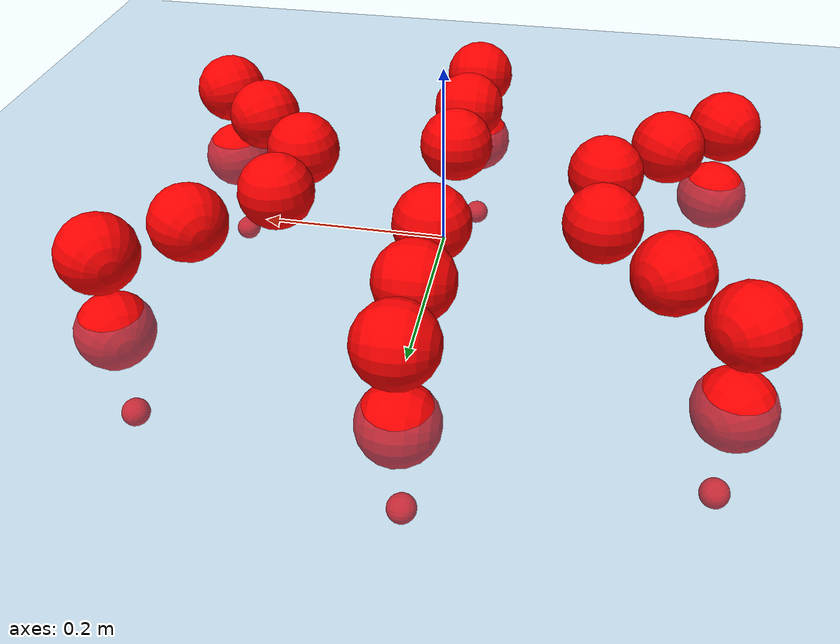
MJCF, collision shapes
<mujoco model="Golem">
  <compiler angle="radian" assetdir="assets" balanceinertia="true" inertiafromgeom="false"/>

  <option timestep="0.005" density="1.2" viscosity="2e-05"/>

  <size nkey="1"/>

  <visual>
    <quality shadowsize="8192"/>
    <map shadowclip="0.5"/>
  </visual>

  <default>
    <default class="/">
      <joint armature="0.01" damping="0.01" frictionloss="0.01"/>
      <geom contype="0" conaffinity="0" group="1" solref="-1000 -80"/>
      <site size="0.01 0.005 0.005" group="5"/>
      <general forcelimited="true" biastype="affine" gainprm="25" biasprm="0 -25 -0.5"/>
      <default class="visual">
        <geom type="mesh" group="2"/>
      </default>
      <default class="collision">
        <geom group="3"/>
      </default>
      <default class="foot">
        <geom size="0.01 0 0" condim="6" group="4" priority="1" solimp="0.015 1 0.01"/>
      </default>
      <default class="reward_collision_sphere">
        <geom group="5" rgba="1 0 0 1"/>
      </default>
    </default>
  </default>

  <asset>
    <texture type="skybox" colorspace="auto" name="//unnamed_texture_0" builtin="gradient" rgb1="0.95 0.95 0.95" rgb2="0.95 0.95 0.95" width="100" height="600"/>
    <texture type="2d" colorspace="auto" name="texplane" builtin="checker" rgb1="0.345 0.575 0.748" rgb2="0.345 0.575 0.748" markrgb="1 1 1" width="512" height="512"/>
    <material name="MatPlane" class="/" texture="texplane" texuniform="true" texrepeat="2 2" specular="0.9"/>
    <mesh name="body" class="/" file="body.stl" scale="0.001 0.001 0.001"/>
    <mesh name="coxa" class="/" file="coxa.stl" scale="0.001 0.001 0.001"/>
    <mesh name="femur" class="/" file="femur.stl" scale="0.001 0.001 0.001"/>
    <mesh name="tibia" class="/" file="tibia.stl" scale="0.001 0.001 0.001"/>
    <mesh name="tarsus" class="/" file="tarsus.stl" scale="0.001 0.001 0.001"/>
  </asset>

  <worldbody>
    <geom name="floor" class="/" size="100 100 0.125" type="plane" group="0" material="MatPlane"/>
    <light name="toplight_shadow" class="/" pos="0 0 5" dir="0.0990148 0.0990148 -0.990148" type="directional" ambient="0.04 0.04 0.04" diffuse="0.55 0.55 0.55" specular="0.12 0.12 0.12"/>
    <light name="toplight_fill" class="/" pos="0 0 5" dir="0.0990148 0.0990148 -0.990148" type="directional" castshadow="false" ambient="0.04 0.04 0.04" diffuse="0.3 0.3 0.3" specular="0.08 0.08 0.08"/>
    <body name="trunk" pos="-0.000556482 -0.000105731 -0.000431463" quat="1 0.000368799 2.79665e-05 -0.000110108">
      <inertial pos="0.000893109 -0.000159024 -0.00493282" quat="0.999999 0.00105601 -0.000275204 -0.000217498" mass="3.73173" diaginertia="0.0135985 0.00417047 0.0174107"/>
      <joint name="//unnamed_joint_0" type="free"/>
      <geom name="//unnamed_geom_1" class="/" pos="0 0 0.0714005" quat="1 0 0 0" type="mesh" rgba="0.9 0.9 0.9 1" mesh="body"/>
      <site name="imu" class="/" pos="0.146924 0.00270586 0.113254" size="0.0100694"/>
      <camera name="track" class="/" pos="0 -1.68339 0" quat="0.707107 0.707107 0 0" mode="trackcom"/>
      <camera name="ego_camera" class="/" pos="0.138255 0 0.111563" quat="-0.5 -0.5 0.5 0.5"/>
      <body name="coxa_RR" pos="-0.18839 -0.0717754 0.0707634" quat="0.382849 -0.000415979 -0.000190748 -0.923811">
        <inertial pos="3.25301e-05 -1.88786e-05 -0.000360748" quat="0.999999 0.00127726 -0.000791843 0.000756544" mass="0.201697" diaginertia="0.0133813 0.0042044 0.0165269"/>
        <joint name="coxa_joint_RR" class="/" pos="0 0 0" axis="0.0024286 -0.0011573 -0.999996" range="-3.13449 3.15538" armature="0.0100793" damping="0.00973671" frictionloss="0.00980455"/>
        <geom name="//unnamed_geom_2" class="/" type="mesh" rgba="0.2 0.2 0.2 1" mesh="coxa"/>
        <geom name="//unnamed_geom_3" class="reward_collision_sphere" size="0.0402777" pos="-0.0319049 0 0"/>
        <body name="femur_RR" pos="0.0643755 0.00313616 -0.00156605" quat="0.500151 -0.499918 0.500101 0.49983">
          <inertial pos="-0.00249873 -9.31307e-05 -0.00262168" quat="0.999919 -0.0125849 0.00126952 -0.00151118" mass="0.199901" diaginertia="0.0133509 0.00412362 0.0168586"/>
          <joint name="femur_joint_RR" class="/" pos="0 0 0" axis="0.00290282 0.00341471 -0.99999" stiffness="0.00657839" range="-3.11934 3.13571" armature="0.00980979" damping="0" frictionloss="0.0101528"/>
          <geom name="//unnamed_geom_4" class="/" type="mesh" rgba="0.9 0.9 0.9 1" mesh="femur"/>
          <geom name="//unnamed_geom_5" class="reward_collision_sphere" size="0.0402777"/>
          <body name="tibia_RR" pos="0.00179019 -0.0903774 -0.00182057" quat="-0.000229407 1 -0.000302799 0.000124253">
            <inertial pos="-0.000227493 0.000291877 -0.00193052" quat="1 -0.000144026 -0.000252768 0.000145161" mass="0.208622" diaginertia="0.0141382 0.00442187 0.0178464"/>
            <joint name="tibia_joint_RR" class="/" pos="0 0 0" axis="0.00578317 -0.00733308 0.999956" range="-3.14274 3.13822" armature="0.0103547" damping="0.00220081" frictionloss="0.00938586"/>
            <geom name="//unnamed_geom_6" class="/" type="mesh" rgba="0.2 0.2 0.2 1" mesh="tibia"/>
            <geom name="//unnamed_geom_7" class="reward_collision_sphere" size="0.0402777"/>
            <body name="tarsus_RR" pos="0.0928324 -0.000606362 -0.000730943" quat="1 -4.97734e-05 2.54593e-05 -3.40092e-05">
              <inertial pos="0.0658747 0.000618144 -5.45467e-05" quat="0.505336 0.495423 0.507031 0.492047" mass="0.209535" diaginertia="0.0133958 0.00420585 0.0176114"/>
              <joint name="tarsus_joint_RR" class="/" pos="0 0 0" axis="0.00769711 0.00343461 0.999964" range="-3.14788 3.12902" armature="0.0105074" damping="0.0404722" frictionloss="0.00956802"/>
              <geom name="//unnamed_geom_8" class="/" type="mesh" rgba="0.9 0.9 0.9 1" mesh="tarsus"/>
              <geom name="foot_1" class="foot" size="0.00985788" pos="0.119112 0 0" quat="0 -0.707107 0 0.707107"/>
              <geom name="//unnamed_geom_10" class="reward_collision_sphere" size="0.0402777"/>
              <geom name="//unnamed_geom_11" class="reward_collision_sphere" size="0.0151041" pos="0.114326 0 0"/>
              <site name="foot_1" class="foot" pos="0.119112 0 0" quat="0 -0.707107 0 0.707107" size="0.0100694"/>
            </body>
          </body>
        </body>
      </body>
      <body name="coxa_RM" pos="0.000365132 -0.110407 0.0728244" quat="0.707921 0.00052737 -3.03629e-05 -0.706291">
        <inertial pos="-0.00145919 -0.000139857 -0.00206821" quat="0.999982 0.000612457 0.00202742 0.00559658" mass="0.204777" diaginertia="0.0131721 0.00421106 0.0173777"/>
        <joint name="coxa_joint_RM" class="/" pos="0 0 0" axis="0.00202037 0.00222979 -0.999995" range="-3.12822 3.132" armature="0.0100525" damping="0.00923852" frictionloss="0.0104573"/>
        <geom name="//unnamed_geom_12" class="/" type="mesh" rgba="0.2 0.2 0.2 1" mesh="coxa"/>
        <geom name="//unnamed_geom_13" class="reward_collision_sphere" size="0.0402777" pos="-0.0319049 0 0"/>
        <body name="femur_RM" pos="0.0639829 0.000132344 -0.00149742" quat="0.499753 -0.500061 0.500264 0.499922">
          <inertial pos="0.00234816 -0.000456713 8.78071e-05" quat="0.999923 0.0117992 -0.0016108 0.00360797" mass="0.205951" diaginertia="0.0134258 0.00413449 0.0172904"/>
          <joint name="femur_joint_RM" class="/" pos="0 0 0" axis="0.00741037 -0.00283126 -0.999969" range="-3.13758 3.14006" armature="0.00957103" damping="0.00565364" frictionloss="0.0098475"/>
          <geom name="//unnamed_geom_14" class="/" type="mesh" rgba="0.9 0.9 0.9 1" mesh="femur"/>
          <geom name="//unnamed_geom_15" class="reward_collision_sphere" size="0.0402777"/>
          <body name="tibia_RM" pos="0.000509269 -0.0910825 -0.000424946" quat="5.39684e-05 1 0.000238931 8.21734e-06">
            <inertial pos="-0.00240809 -0.00113113 -0.000135042" quat="1 5.69597e-05 0.000286103 0.000652503" mass="0.201961" diaginertia="0.0137009 0.00412445 0.0165644"/>
            <joint name="tibia_joint_RM" class="/" pos="0 0 0" axis="8.28984e-05 0.000337252 1" range="-3.13216 3.15716" armature="0.0100617" damping="0.0124816" frictionloss="0.0105579"/>
            <geom name="//unnamed_geom_16" class="/" type="mesh" rgba="0.2 0.2 0.2 1" mesh="tibia"/>
            <geom name="//unnamed_geom_17" class="reward_collision_sphere" size="0.0402777"/>
            <body name="tarsus_RM" pos="0.0935105 -0.000955021 -3.99892e-05" quat="1 0.00022402 -1.7808e-05 -0.000156801">
              <inertial pos="0.0643167 0.000278592 -0.000301626" quat="0.501394 0.497297 0.500628 0.500671" mass="0.202791" diaginertia="0.0130824 0.00418398 0.0173124"/>
              <joint name="tarsus_joint_RM" class="/" pos="0 0 0" axis="-0.00409032 0.00573395 0.999975" range="-3.12808 3.13608" armature="0.00999008" damping="0.00561603" frictionloss="0.0103481"/>
              <geom name="//unnamed_geom_18" class="/" type="mesh" rgba="0.9 0.9 0.9 1" mesh="tarsus"/>
              <geom name="foot_2" class="foot" size="0.00930338" pos="0.119112 0 0" quat="0 -0.707107 0 0.707107"/>
              <geom name="//unnamed_geom_20" class="reward_collision_sphere" size="0.0402777"/>
              <geom name="//unnamed_geom_21" class="reward_collision_sphere" size="0.0151041" pos="0.114326 0 0"/>
              <site name="foot_2" class="foot" pos="0.119112 0 0" quat="0 -0.707107 0 0.707107" size="0.0100694"/>
            </body>
          </body>
        </body>
      </body>
      <body name="coxa_RF" pos="0.189409 -0.0680584 0.0696724" quat="0.92382 -0.000290711 -4.22294e-05 -0.382827">
        <inertial pos="-0.00247831 -0.000619176 0.000831012" quat="0.99996 -0.00121617 -0.00882706 -0.00123306" mass="0.208394" diaginertia="0.0134794 0.00405433 0.0170377"/>
        <joint name="coxa_joint_RF" class="/" pos="0 0 0" axis="0.00188481 0.00150772 -0.999997" range="-3.123 3.13925" armature="0.0106219" damping="0.0102873" frictionloss="0.0105988"/>
        <geom name="//unnamed_geom_22" class="/" type="mesh" rgba="0.2 0.2 0.2 1" mesh="coxa"/>
        <geom name="//unnamed_geom_23" class="reward_collision_sphere" size="0.0402777" pos="-0.0319049 0 0"/>
        <body name="femur_RF" pos="0.0635874 -0.000967744 0.000862707" quat="0.50023 -0.499676 0.499654 0.500439">
          <inertial pos="-0.000105461 0.00233593 -0.000118146" quat="0.999996 0.000667572 -0.00159611 -0.00208618" mass="0.202814" diaginertia="0.0137085 0.00414011 0.0172432"/>
          <joint name="femur_joint_RF" class="/" pos="0 0 0" axis="0.0024086 -0.000367234 -0.999997" range="-3.14486 3.12435" armature="0.0101136" damping="0.00642577" frictionloss="0.0105273"/>
          <geom name="//unnamed_geom_24" class="/" type="mesh" rgba="0.9 0.9 0.9 1" mesh="femur"/>
          <geom name="//unnamed_geom_25" class="reward_collision_sphere" size="0.0402777"/>
          <body name="tibia_RF" pos="0.00159308 -0.0891916 0.00103675" quat="-4.5692e-05 1 0.000405707 -0.000146785">
            <inertial pos="-0.00180345 -0.00139697 0.00213461" quat="1 -2.33004e-05 -6.54351e-05 -0.000108077" mass="0.206984" diaginertia="0.0136654 0.00425731 0.0172751"/>
            <joint name="tibia_joint_RF" class="/" pos="0 0 0" axis="0.000210313 -0.0014999 0.999999" range="-3.1301 3.11482" armature="0.0100017" damping="0.00153506" frictionloss="0.0103176"/>
            <geom name="//unnamed_geom_26" class="/" type="mesh" rgba="0.2 0.2 0.2 1" mesh="tibia"/>
            <geom name="//unnamed_geom_27" class="reward_collision_sphere" size="0.0402777"/>
            <body name="tarsus_RF" pos="0.0944608 0.00205302 -0.00164093" quat="1 0.000300747 -3.47969e-05 0.000279734">
              <inertial pos="0.0624956 0.000296968 -0.000642065" quat="0.497344 0.499345 0.501846 0.501453" mass="0.201108" diaginertia="0.0134492 0.00434925 0.0168946"/>
              <joint name="tarsus_joint_RF" class="/" pos="0 0 0" axis="-0.00383891 0.00674324 0.99997" range="-3.13462 3.14224" armature="0.0107847" damping="0.000183851" frictionloss="0.0113748"/>
              <geom name="//unnamed_geom_28" class="/" type="mesh" rgba="0.9 0.9 0.9 1" mesh="tarsus"/>
              <geom name="foot_3" class="foot" size="0.0109509" pos="0.119112 0 0" quat="0 -0.707107 0 0.707107"/>
              <geom name="//unnamed_geom_30" class="reward_collision_sphere" size="0.0402777"/>
              <geom name="//unnamed_geom_31" class="reward_collision_sphere" size="0.0151041" pos="0.114326 0 0"/>
              <site name="foot_3" class="foot" pos="0.119112 0 0" quat="0 -0.707107 0 0.707107" size="0.0100694"/>
            </body>
          </body>
        </body>
      </body>
      <body name="coxa_LR" pos="-0.18945 0.0717672 0.0717304" quat="0.382313 0.000187616 -0.000841 0.924033">
        <inertial pos="0.000201047 -0.00115312 -0.00210758" quat="0.999977 0.00316238 -0.00606471 -0.000185157" mass="0.193378" diaginertia="0.0131387 0.00407592 0.0166052"/>
        <joint name="coxa_joint_LR" class="/" pos="0 0 0" axis="0.000965797 -0.000473389 -0.999999" range="-3.11864 3.1902" armature="0.0107399" damping="0.0121157" frictionloss="0.00878052"/>
        <geom name="//unnamed_geom_32" class="/" type="mesh" rgba="0.2 0.2 0.2 1" mesh="coxa"/>
        <geom name="//unnamed_geom_33" class="reward_collision_sphere" size="0.0402777" pos="-0.0319049 0 0"/>
        <body name="femur_LR" pos="0.0648796 -0.00144906 -0.00153796" quat="0.500039 -0.499903 0.500096 0.499962">
          <inertial pos="-0.000584357 -0.000792544 -0.000650518" quat="1 -0.000103701 6.05005e-05 -0.0001181" mass="0.204317" diaginertia="0.0137721 0.00436835 0.0174255"/>
          <joint name="femur_joint_LR" class="/" pos="0 0 0" axis="0.00143221 0.00571571 0.999983" range="-3.12773 3.11222" armature="0.010405" damping="0.00923606" frictionloss="0.0105911"/>
          <geom name="//unnamed_geom_34" class="/" type="mesh" rgba="0.9 0.9 0.9 1" mesh="femur"/>
          <geom name="//unnamed_geom_35" class="reward_collision_sphere" size="0.0402777"/>
          <body name="tibia_LR" pos="-0.00149723 -0.0927029 -0.000670412" quat="-0.000149945 1 -0.000691524 -9.54117e-05">
            <inertial pos="0.000325203 0.00258953 -8.72786e-05" quat="0.999971 0.000930831 0.0051338 0.00551533" mass="0.200094" diaginertia="0.0139458 0.00428051 0.0166103"/>
            <joint name="tibia_joint_LR" class="/" pos="0 0 0" axis="-0.00334324 0.00342474 -0.999989" range="-3.13304 3.13823" armature="0.00953084" damping="0.00223175" frictionloss="0.010033"/>
            <geom name="//unnamed_geom_36" class="/" type="mesh" rgba="0.2 0.2 0.2 1" mesh="tibia"/>
            <geom name="//unnamed_geom_37" class="reward_collision_sphere" size="0.0402777"/>
            <body name="tarsus_LR" pos="0.0957277 0.00183652 0.000866906" quat="1 0.000377256 7.98425e-05 0.000125317">
              <inertial pos="0.0650209 0.000109897 0.00114183" quat="0.501439 0.499893 0.501182 0.497475" mass="0.196614" diaginertia="0.0131691 0.00407057 0.0166938"/>
              <joint name="tarsus_joint_LR" class="/" pos="0 0 0" axis="-0.000609021 0.00292057 -0.999996" range="-3.13374 3.15043" armature="0.00865714" damping="0.0282479" frictionloss="0.0105918"/>
              <geom name="//unnamed_geom_38" class="/" type="mesh" rgba="0.9 0.9 0.9 1" mesh="tarsus"/>
              <geom name="foot_4" class="foot" size="0.00973599" pos="0.119112 0 0" quat="0.707107 0 -0.707107 0"/>
              <geom name="//unnamed_geom_40" class="reward_collision_sphere" size="0.0402777"/>
              <geom name="//unnamed_geom_41" class="reward_collision_sphere" size="0.0151041" pos="0.114326 0 0"/>
              <site name="foot_4" class="foot" pos="0.119112 0 0" quat="0.707107 0 -0.707107 0" size="0.0100694"/>
            </body>
          </body>
        </body>
      </body>
      <body name="coxa_LM" pos="-0.00134717 0.110631 0.0720334" quat="0.706834 0.000459777 0.000979815 0.707379">
        <inertial pos="0.00221102 -0.0021697 0.00086553" quat="0.999963 -0.00047826 0.00606888 0.00610667" mass="0.205883" diaginertia="0.013291 0.00420901 0.0172343"/>
        <joint name="coxa_joint_LM" class="/" pos="0 0 0" axis="0.00171345 -0.000924081 -0.999998" range="-3.13451 3.1329" armature="0.0112861" damping="0" frictionloss="0.00953892"/>
        <geom name="//unnamed_geom_42" class="/" type="mesh" rgba="0.2 0.2 0.2 1" mesh="coxa"/>
        <geom name="//unnamed_geom_43" class="reward_collision_sphere" size="0.0402777" pos="-0.0319049 0 0"/>
        <body name="femur_LM" pos="0.0617694 0.00112196 -0.000640938" quat="0.500051 -0.500232 0.499649 0.500067">
          <inertial pos="-0.00174307 0.000136878 -0.00220104" quat="1 -0.000158882 -6.04043e-05 0.000399686" mass="0.211919" diaginertia="0.0138729 0.00428643 0.0174928"/>
          <joint name="femur_joint_LM" class="/" pos="0 0 0" axis="0.0062599 -0.00013392 0.99998" range="-3.13194 3.1196" armature="0.0103588" damping="0.0052304" frictionloss="0.0100246"/>
          <geom name="//unnamed_geom_44" class="/" type="mesh" rgba="0.9 0.9 0.9 1" mesh="femur"/>
          <geom name="//unnamed_geom_45" class="reward_collision_sphere" size="0.0402777"/>
          <body name="tibia_LM" pos="0.000724078 -0.0872933 0.00147607" quat="-0.000247807 1 3.86921e-05 0.000100288">
            <inertial pos="0.00248592 -0.00029729 0.0025534" quat="0.999999 -0.000277101 -0.00048119 0.00156804" mass="0.202893" diaginertia="0.0136312 0.00408758 0.0174111"/>
            <joint name="tibia_joint_LM" class="/" pos="0 0 0" axis="-0.000994995 0.00136716 -0.999999" range="-3.16073 3.13349" armature="0.0104419" damping="0" frictionloss="0.00940834"/>
            <geom name="//unnamed_geom_46" class="/" type="mesh" rgba="0.2 0.2 0.2 1" mesh="tibia"/>
            <geom name="//unnamed_geom_47" class="reward_collision_sphere" size="0.0402777"/>
            <body name="tarsus_LM" pos="0.094883 -0.00165444 0.000929266" quat="1 0.000150798 -0.000149144 0.000207134">
              <inertial pos="0.0633784 -0.000130305 0.00033297" quat="0.498479 0.500847 0.500882 0.499788" mass="0.210432" diaginertia="0.0136181 0.00449977 0.0180144"/>
              <joint name="tarsus_joint_LM" class="/" pos="0 0 0" axis="0.00576859 0.00241856 -0.99998" stiffness="0.00397012" range="-3.19103 3.14138" armature="0.0102575" damping="0.00482661" frictionloss="0.0101787"/>
              <geom name="//unnamed_geom_48" class="/" type="mesh" rgba="0.9 0.9 0.9 1" mesh="tarsus"/>
              <geom name="foot_5" class="foot" size="0.0101371" pos="0.119112 0 0" quat="0.707107 0 -0.707107 0"/>
              <geom name="//unnamed_geom_50" class="reward_collision_sphere" size="0.0402777"/>
              <geom name="//unnamed_geom_51" class="reward_collision_sphere" size="0.0151041" pos="0.114326 0 0"/>
              <site name="foot_5" class="foot" pos="0.119112 0 0" quat="0.707107 0 -0.707107 0" size="0.0100694"/>
            </body>
          </body>
        </body>
      </body>
      <body name="coxa_LF" pos="0.190313 0.0715034 0.0723763" quat="0.924311 -0.000197039 0.000327658 0.381641">
        <inertial pos="0.000111187 0.00266424 0.000222882" quat="0.999998 0.00212656 0.000363935 0.000384219" mass="0.206712" diaginertia="0.013995 0.00443489 0.0177723"/>
        <joint name="coxa_joint_LF" class="/" pos="0 0 0" axis="0.00333671 -0.00616232 -0.999975" range="-3.13547 3.1485" armature="0.0113488" damping="0" frictionloss="0.00955162"/>
        <geom name="//unnamed_geom_52" class="/" type="mesh" rgba="0.2 0.2 0.2 1" mesh="coxa"/>
        <geom name="//unnamed_geom_53" class="reward_collision_sphere" size="0.0402777" pos="-0.0319049 0 0"/>
        <body name="femur_LF" pos="0.064334 -0.00202147 -0.00309769" quat="0.499922 -0.500235 0.500521 0.49932">
          <inertial pos="0.000752536 0.000658296 0.00262238" quat="0.999948 -0.00887389 -0.00499662 -0.000669671" mass="0.205132" diaginertia="0.0135384 0.0043609 0.0171634"/>
          <joint name="femur_joint_LF" class="/" pos="0 0 0" axis="0.00522098 0.000295818 0.999986" range="-3.13373 3.08932" armature="0.00997624" damping="0" frictionloss="0.00963837"/>
          <geom name="//unnamed_geom_54" class="/" type="mesh" rgba="0.9 0.9 0.9 1" mesh="femur"/>
          <geom name="//unnamed_geom_55" class="reward_collision_sphere" size="0.0402777"/>
          <body name="tibia_LF" pos="-0.000114927 -0.0915301 0.000653861" quat="0.000861327 1 0.000446 -0.00019506">
            <inertial pos="-0.000957489 -0.00228942 0.000176319" quat="1 0.000475798 -0.000376481 0.000326418" mass="0.203356" diaginertia="0.0135976 0.00421202 0.0174743"/>
            <joint name="tibia_joint_LF" class="/" pos="0 0 0" axis="-0.00942768 -0.00557702 -0.99994" range="-3.17613 3.14995" armature="0.0103677" damping="0.00152187" frictionloss="0.0112134"/>
            <geom name="//unnamed_geom_56" class="/" type="mesh" rgba="0.2 0.2 0.2 1" mesh="tibia"/>
            <geom name="//unnamed_geom_57" class="reward_collision_sphere" size="0.0402777"/>
            <body name="tarsus_LF" pos="0.0941361 0.000882579 -0.000328991" quat="0.999999 0.00102351 -0.000717931 -0.000372721">
              <inertial pos="0.0649684 0.000148166 -0.000144427" quat="0.500157 0.501559 0.500173 0.498105" mass="0.204593" diaginertia="0.0131451 0.00411105 0.0168946"/>
              <joint name="tarsus_joint_LF" class="/" pos="0 0 0" axis="0.0149321 0.00232611 -0.999886" stiffness="0.0284001" range="-3.15851 3.10232" armature="0.00952523" damping="0.029305" frictionloss="0.00988166"/>
              <geom name="//unnamed_geom_58" class="/" type="mesh" rgba="0.9 0.9 0.9 1" mesh="tarsus"/>
              <geom name="foot_6" class="foot" size="0.00928341" pos="0.119112 0 0" quat="0.707107 0 -0.707107 0"/>
              <geom name="//unnamed_geom_60" class="reward_collision_sphere" size="0.0402777"/>
              <geom name="//unnamed_geom_61" class="reward_collision_sphere" size="0.0151041" pos="0.114326 0 0"/>
              <site name="foot_6" class="foot" pos="0.119112 0 0" quat="0.707107 0 -0.707107 0" size="0.0100694"/>
            </body>
          </body>
        </body>
      </body>
    </body>
  </worldbody>

  <contact>
    <pair class="/" geom1="floor" geom2="foot_1" name="//unnamed_contact_0"/>
    <pair class="/" geom1="floor" geom2="foot_2" name="//unnamed_contact_1"/>
    <pair class="/" geom1="floor" geom2="foot_3" name="//unnamed_contact_2"/>
    <pair class="/" geom1="floor" geom2="foot_4" name="//unnamed_contact_3"/>
    <pair class="/" geom1="floor" geom2="foot_5" name="//unnamed_contact_4"/>
    <pair class="/" geom1="floor" geom2="foot_6" name="//unnamed_contact_5"/>
  </contact>

  <actuator>
    <general name="coxa_joint_RR" class="/" joint="coxa_joint_RR" forcerange="-6.681 6.681" gainprm="24.2491" biasprm="0 -24.2491 -0.516161"/>
    <general name="femur_joint_RR" class="/" joint="femur_joint_RR" forcerange="-7.19185 7.19185" gainprm="24.2491" biasprm="0 -24.2491 -0.516161"/>
    <general name="tibia_joint_RR" class="/" joint="tibia_joint_RR" forcerange="-6.64064 6.64064" gainprm="24.2491" biasprm="0 -24.2491 -0.516161"/>
    <general name="tarsus_joint_RR" class="/" joint="tarsus_joint_RR" forcerange="-7.31462 7.31462" gainprm="24.2491" biasprm="0 -24.2491 -0.516161"/>
    <general name="coxa_joint_RM" class="/" joint="coxa_joint_RM" forcerange="-7.33131 7.33131" gainprm="24.2491" biasprm="0 -24.2491 -0.516161"/>
    <general name="femur_joint_RM" class="/" joint="femur_joint_RM" forcerange="-7.32218 7.32218" gainprm="24.2491" biasprm="0 -24.2491 -0.516161"/>
    <general name="tibia_joint_RM" class="/" joint="tibia_joint_RM" forcerange="-6.75062 6.75062" gainprm="24.2491" biasprm="0 -24.2491 -0.516161"/>
    <general name="tarsus_joint_RM" class="/" joint="tarsus_joint_RM" forcerange="-8.05274 8.05274" gainprm="24.2491" biasprm="0 -24.2491 -0.516161"/>
    <general name="coxa_joint_RF" class="/" joint="coxa_joint_RF" forcerange="-7.16304 7.16304" gainprm="24.2491" biasprm="0 -24.2491 -0.516161"/>
    <general name="femur_joint_RF" class="/" joint="femur_joint_RF" forcerange="-7.30183 7.30183" gainprm="24.2491" biasprm="0 -24.2491 -0.516161"/>
    <general name="tibia_joint_RF" class="/" joint="tibia_joint_RF" forcerange="-8.00781 8.00781" gainprm="24.2491" biasprm="0 -24.2491 -0.516161"/>
    <general name="tarsus_joint_RF" class="/" joint="tarsus_joint_RF" forcerange="-7.16183 7.16183" gainprm="24.2491" biasprm="0 -24.2491 -0.516161"/>
    <general name="coxa_joint_LR" class="/" joint="coxa_joint_LR" forcerange="-7.30856 7.30856" gainprm="24.2491" biasprm="0 -24.2491 -0.516161"/>
    <general name="femur_joint_LR" class="/" joint="femur_joint_LR" forcerange="-6.88622 6.88622" gainprm="24.2491" biasprm="0 -24.2491 -0.516161"/>
    <general name="tibia_joint_LR" class="/" joint="tibia_joint_LR" forcerange="-7.5522 7.5522" gainprm="24.2491" biasprm="0 -24.2491 -0.516161"/>
    <general name="tarsus_joint_LR" class="/" joint="tarsus_joint_LR" forcerange="-7.1652 7.1652" gainprm="24.2491" biasprm="0 -24.2491 -0.516161"/>
    <general name="coxa_joint_LM" class="/" joint="coxa_joint_LM" forcerange="-7.55034 7.55034" gainprm="24.2491" biasprm="0 -24.2491 -0.516161"/>
    <general name="femur_joint_LM" class="/" joint="femur_joint_LM" forcerange="-7.62781 7.62781" gainprm="24.2491" biasprm="0 -24.2491 -0.516161"/>
    <general name="tibia_joint_LM" class="/" joint="tibia_joint_LM" forcerange="-7.04666 7.04666" gainprm="24.2491" biasprm="0 -24.2491 -0.516161"/>
    <general name="tarsus_joint_LM" class="/" joint="tarsus_joint_LM" forcerange="-7.52735 7.52735" gainprm="24.2491" biasprm="0 -24.2491 -0.516161"/>
    <general name="coxa_joint_LF" class="/" joint="coxa_joint_LF" forcerange="-7.62837 7.62837" gainprm="24.2491" biasprm="0 -24.2491 -0.516161"/>
    <general name="femur_joint_LF" class="/" joint="femur_joint_LF" forcerange="-7.09872 7.09872" gainprm="24.2491" biasprm="0 -24.2491 -0.516161"/>
    <general name="tibia_joint_LF" class="/" joint="tibia_joint_LF" forcerange="-7.55487 7.55487" gainprm="24.2491" biasprm="0 -24.2491 -0.516161"/>
    <general name="tarsus_joint_LF" class="/" joint="tarsus_joint_LF" forcerange="-7.56752 7.56752" gainprm="24.2491" biasprm="0 -24.2491 -0.516161"/>
  </actuator>

  <sensor>
    <gyro site="imu" name="imu_angular_velocity"/>
    <velocimeter site="imu" name="imu_linear_velocity"/>
    <framelinvel objtype="site" objname="foot_1" name="foot_1_global_linear_velocity"/>
    <framelinvel objtype="site" objname="foot_2" name="foot_2_global_linear_velocity"/>
    <framelinvel objtype="site" objname="foot_3" name="foot_3_global_linear_velocity"/>
    <framelinvel objtype="site" objname="foot_4" name="foot_4_global_linear_velocity"/>
    <framelinvel objtype="site" objname="foot_5" name="foot_5_global_linear_velocity"/>
    <framelinvel objtype="site" objname="foot_6" name="foot_6_global_linear_velocity"/>
  </sensor>

  <keyframe>
    <key name="home" qpos="0 0 0.1457 1 0 0 0 0 0 0 0 0 0 0 0 0 0 0 0 0 0 0 0 0 0 0 0 0 0 0 0"/>
  </keyframe>
</mujoco>
